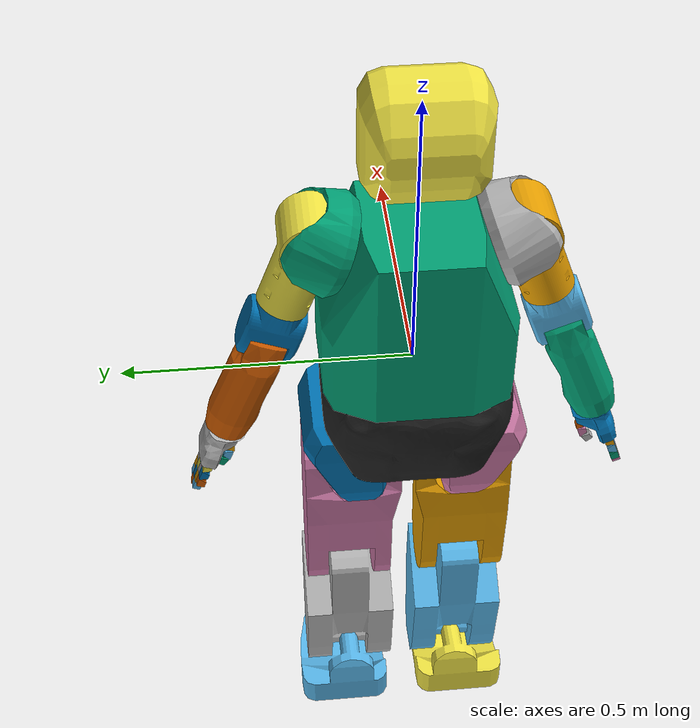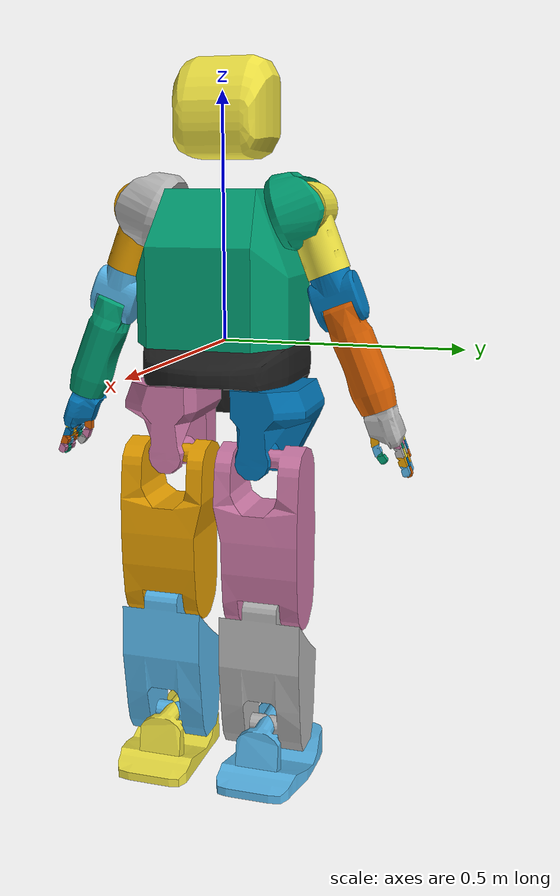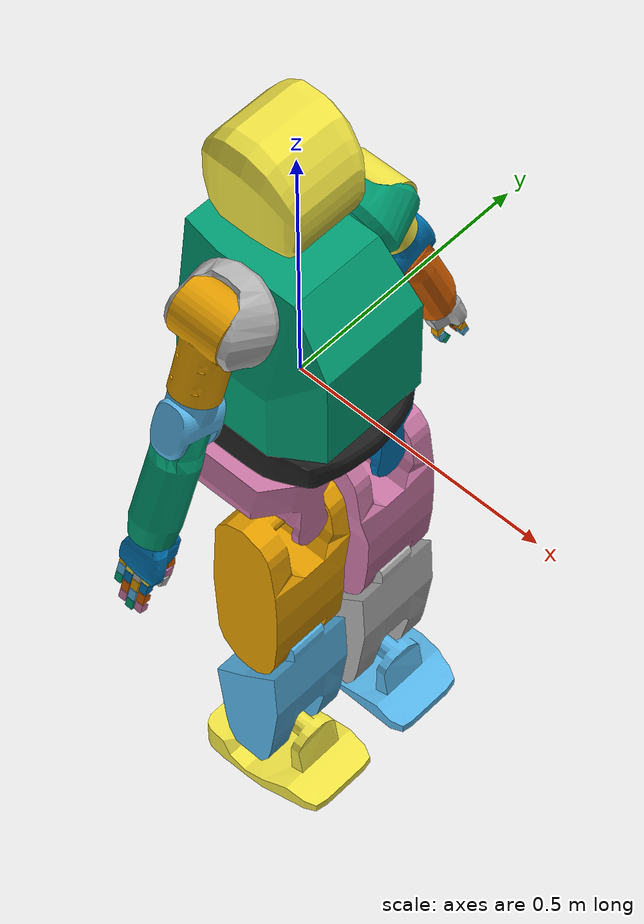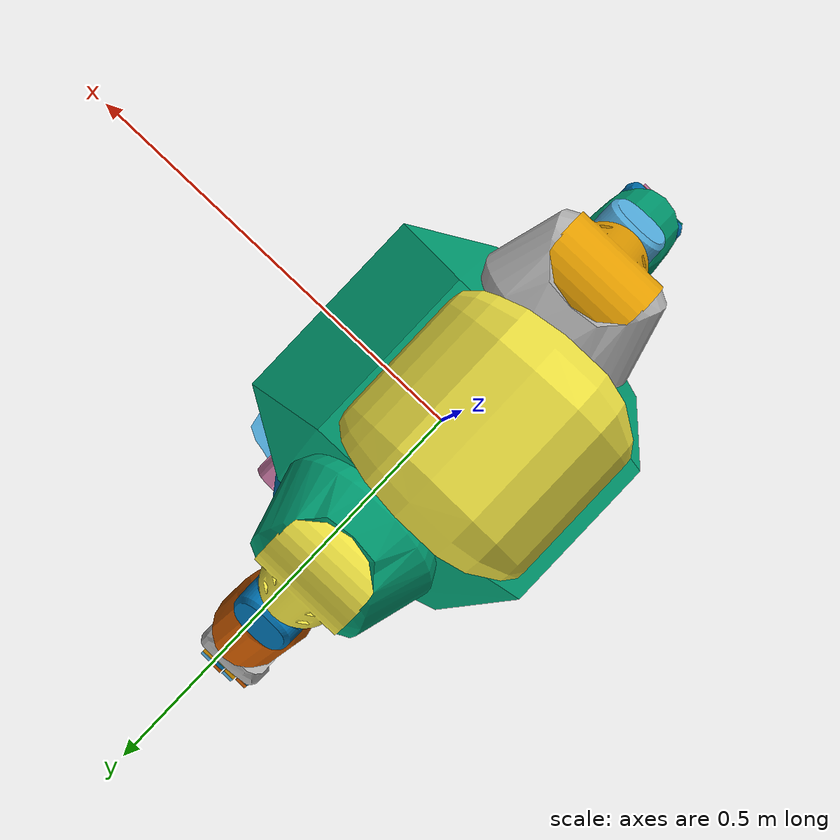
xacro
<?xml version="1.0"?>
<robot name="rrbot" xmlns:xacro="http://ros.org/wiki/xacro">

       <xacro:include filename="$(find ar600_description)/gazebo/gazebo.urdf.xacro" />
       <xacro:include filename="$(find ar600_description)/urdf/base/base.urdf.xacro" />
       <xacro:include filename="$(find ar600_description)/urdf/head/head.urdf.xacro" />
       <xacro:include filename="$(find ar600_description)/urdf/leg/leg.urdf.xacro" />
       <xacro:include filename="$(find ar600_description)/urdf/hand/hand.urdf.xacro" />
       <xacro:include filename="$(find ar600_description)/urdf/palm/palm.urdf.xacro" />

       <link name="world"/>

       <xacro:ar600_body_macro name="base"/>

       <joint name="fixed" type="fixed">
			<parent link="world"/>
			<child link="base_link"/>
		</joint>

       <xacro:ar600_head_xacro name="head" parent="torso">
			<origin xyz="-0.05 0 .37" rpy="0 0 0"/>
       </xacro:ar600_head_xacro>

		<xacro:ar600_leg_macro side="right" reflect="-1" parent="base">
			<origin xyz="0.025 -.1 -0.085" rpy=" 0 0 0"/>
		</xacro:ar600_leg_macro>

		<xacro:ar600_leg_macro side="left" reflect="1" parent="base">
			<origin xyz="0.025 .1 -0.085" rpy=" 0 0 0"/>
		</xacro:ar600_leg_macro>

		<xacro:ar600_hand_macro side="left" parent="torso" reflect="1">
			<origin xyz="-0.01 0.12 .25" rpy="1.57 1.2 1.57"/>
		</xacro:ar600_hand_macro>

		<xacro:ar600_hand_macro side="right" parent="torso" reflect="-1">
			<origin xyz="-0.01 -0.12 .25" rpy="-1.57 1.2 -1.57"/>
		</xacro:ar600_hand_macro>

		<xacro:ar600_palm_macro side="right" otherside="left" parent="right_hand_effector" reflect="-1">
			<origin xyz="0 0 0" rpy="0 0 1.57"/>
		</xacro:ar600_palm_macro>

		<xacro:ar600_palm_macro side="left" otherside="right" parent="left_hand_effector" reflect="1">
			<origin xyz="0 0 0" rpy="0 0 -1.57"/>
		</xacro:ar600_palm_macro>
</robot>

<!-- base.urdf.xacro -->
<robot xmlns:xacro="http://ros.org/wiki/xacro">

  	<xacro:include filename="$(find ar600_description)/urdf/base/base.gazebo.xacro" />

	<xacro:macro name="ar600_body_macro" params="name">
		<link name="${name}_link">
			<inertial>
				<mass value="10"/>
				<inertia
					 ixx="1.0" ixy="0.0" ixz="0.0"
					 		   iyy="1.0" iyz="0.0"
					                     izz="1.0"
				/>
			</inertial>
			<collision>
				<geometry>
					<mesh filename="package://ar600_description/meshes/base.stl"/>
				</geometry>
			</collision>
			<visual>
				<geometry>
					<mesh filename="package://ar600_description/meshes/base_low.dae"/>
				</geometry>
			</visual>
		</link>

		<link name="torso_link">
			<inertial>
				<mass value="30"/>
				<inertia
					 ixx="1.0" ixy="0.0" ixz="0.0"
					 	       iyy="1.0" iyz="0.0"
					                     izz="1.0"
				/>
			</inertial>
			<collision>
				<geometry>
					<mesh filename="package://ar600_description/meshes/body.stl"/>
				</geometry>
			</collision>
			<visual>
				<geometry>
					<mesh filename="package://ar600_description/meshes/body.dae"/>
				</geometry>
			</visual>
		</link>

	 	<joint name="torso_rotation_joint" type="revolute">
				<axis xyz="0 0 1" />
				<dynamics damping="0.7" />
				<parent link="${name}_link"/>
				<child link="torso_link"/>
				<limit effort="1000.0" lower="-.5" upper=".5" velocity="0.5"/>
				<origin xyz="0 0 0" rpy="0 0 0"/>
    	</joint>

		<xacro:ar600_base_gazebo name="${name}"/>
		<xacro:ar600_torso_gazebo name="${name}"/>
	</xacro:macro>

</robot>

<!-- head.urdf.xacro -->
<robot xmlns:xacro="http://ros.org/wiki/xacro">

	<xacro:include filename="$(find ar600_description)/urdf/head/head.gazebo.xacro" />

  	<xacro:macro name="ar600_head_xacro" params="name parent *origin">
  		<link name="${name}_link">
			<visual>
				<geometry>
					<mesh filename="package://ar600_description/meshes/head_low.dae"/>
				</geometry>
			</visual>
			<inertial>
				<mass value="1"/>
				<inertia
					 ixx="1.0" ixy="0.0" ixz="0.0"
					 		   iyy="1.0" iyz="0.0"
					 		             izz="1.0"/>
			</inertial>
			<collision>
				<geometry>
					<mesh filename="package://ar600_description/meshes/phys_model/head.stl"/>
				</geometry>

			</collision>
  		</link>

  		<link name="head_mount">
			<inertial>
				<mass value=".1"/>
				<inertia
					 ixx="1.0" ixy="0.0" ixz="0.0"
					           iyy="1.0" iyz="0.0"
					                     izz="1.0"/>
			</inertial>
  		</link>

		<link name="head_tilt_mount">
			<inertial>
				<mass value=".1"/>
				<inertia
					 ixx="1.0" ixy="0.0" ixz="0.0"
					 		   iyy="1.0" iyz="0.0"
					 		   			 izz="1.0"/>
			</inertial>
  		</link>

  		<joint name="torso_head_mount" type="revolute">
			<parent link="${parent}_link"/>
			<child link="head_mount"/>
			<xacro:insert_block name="origin"/>
			<limit effort="1000.0" lower="-0.548" upper="0.548" velocity="0.5"/>
			<axis xyz="0 0 1"/>
			<dynamics damping="0.7" />
		</joint>

  		<joint name="mount_head_tilt_mount" type="revolute">
			<parent link="head_mount"/>
			<child link="head_tilt_mount"/>
			<origin xyz="0 0 0" rpy="0 0 0"/>
			<limit effort="1000.0" lower="-.1" upper="0.1" velocity="0.5"/>
			<axis xyz="1 0 0"/>
			<dynamics damping="0.7" />
		</joint>

		<joint name="head_mount_head" type="revolute">
			<parent link="head_tilt_mount"/>
			<child link="${name}_link"/>
			<limit effort="1000.0" lower="-0.25" upper="0.25" velocity="0.5"/>
			<axis xyz="0 1 0"/>
			<dynamics damping="0.7" />
			<origin xyz="0 0 0" rpy="0 0 0"/>
		</joint>

  	</xacro:macro>
</robot>

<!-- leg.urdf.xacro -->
<robot xmlns:xacro="http://ros.org/wiki/xacro">

	<xacro:include filename="$(find ar600_description)/urdf/leg/leg.gazebo.xacro" />
  	<xacro:include filename="$(find ar600_description)/urdf/leg/leg.transmission.xacro" />

	<xacro:macro name="ar600_leg_macro" params="parent side reflect *origin">

		<link name="base_${side}_hip">
			<visual>
				<geometry>
					<mesh filename="package://ar600_description/meshes/${side}_base_leg_low.dae"/>
				</geometry>
			</visual>
			<inertial>
				<mass value="5"/>
				<inertia
					 ixx="1.0" ixy="0.0" ixz="0.0"
					 		   iyy="1.0" iyz="0.0"
					 		             izz="1.0"/>
			</inertial>
		</link>

		<link name="${side}_hip_mount">
			<inertial>
				<mass value="1"/>
				<inertia
					 ixx="1.0" ixy="0.0" ixz="0.0"
						       iyy="1.0" iyz="0.0"
						           		 izz="1.0"/>
			</inertial>
		</link>

		<link name="${side}_hip">
			<visual>
				<geometry>
					<mesh filename="package://ar600_description/meshes/${side}_leg_low.dae"/>
				</geometry>
			</visual>
			<inertial>
				<mass value="5"/>
				<inertia
					 ixx="1.0" ixy="0.0" ixz="0.0"
							   iyy="1.0" iyz="0.0"
							       		 izz="1.0"/>
			</inertial>
			<collision>
				<geometry>
					<mesh filename="package://ar600_description/meshes/phys_model/hip.stl"/>
				</geometry>
			</collision>
		</link>

		<link name="${side}_shin">
			<visual>
				<geometry>
					<mesh filename="package://ar600_description/meshes/shin_low.dae"/>
				</geometry>
			</visual>
			<inertial>
				<mass value="5"/>
				<inertia
					 ixx="1.0" ixy="0.0" ixz="0.0"
					           iyy="1.0" iyz="0.0"
					                     izz="1.0"/>
			</inertial>
			<collision>
				<geometry>
					<mesh filename="package://ar600_description/meshes/phys_model/phys_shin.stl"/>
				</geometry>
			</collision>
		</link>

		<link name="${side}_shin_foot_mount">
			<inertial>
				<mass value="1"/>
				<inertia
					 ixx="1.0" ixy="0.0" ixz="0.0"
					 		   iyy="1.0" iyz="0.0"
					 		             izz="1.0"/>
			</inertial>
		</link>

		<link name="${side}_foot">
			<visual>
				<geometry>
					<mesh filename="package://ar600_description/meshes/${side}_foot_low.dae"/>
				</geometry>
			</visual>
			<inertial>
				<mass value="2"/>
				<inertia
					 ixx="1.0" ixy="0.0" ixz="0.0"
					           iyy="1.0" iyz="0.0"
					                     izz="1.0"/>
			</inertial>
			<collision>
				<geometry>
					<mesh filename="package://ar600_description/meshes/phys_model/foot.stl"/>
				</geometry>
			</collision>
		</link>

		<joint name="base_${side}_leg_joint" type="revolute">
			<parent link="${parent}_link"/>
			<child link="base_${side}_hip"/>
			<xacro:insert_block name="origin"/>
			<axis xyz="0 0 ${reflect}"/>
			<limit effort="1000.0" lower="${-.5*reflect}" upper="${.5*reflect}" velocity="0.5"/>
			<dynamics damping="0.7" />
		</joint>

		<joint name="${side}_base_mount" type="revolute">
			<parent link="base_${side}_hip"/>
			<child link="${side}_hip_mount"/>
			<origin xyz="0.0267 0 -.154" rpy=" 0 0 0"/>
			<limit effort="1000.0" lower="${-.5*reflect}" upper="${.5*reflect}" velocity="0.5"/>
			<axis xyz="${reflect} 0 0"/>
			<dynamics damping="0.7" />
		</joint>

		<joint name="${side}_base_mount_hip" type="revolute">
			<parent link="${side}_hip_mount"/>
			<child link="${side}_hip"/>
			<origin xyz="0 0 0" rpy="0 0 0"/>
			<limit effort="1000.0" lower="-.5" upper=".5" velocity="0.5"/>
			<axis xyz="0 -1 0"/>
			<dynamics damping="0.7" />
		</joint>

		<joint name="${side}_hip_${side}_shin" type="revolute">
			<parent link="${side}_hip"/>
			<child link="${side}_shin"/>
			<origin xyz="0 ${.01*reflect} -.335" rpy="0 0 0"/>
			<limit effort="1000.0" lower="0" upper=".707" velocity="0.5"/>
			<axis xyz="0 1 0"/>
			<dynamics damping="0.7" />
		</joint>

		<joint name="${side}_shin_${side}_foot_mount" type="revolute">
			<parent link="${side}_shin"/>
			<child link="${side}_shin_foot_mount"/>
			<origin xyz="0 0 -.26" rpy="0 0 0"/>
			<limit effort="1000.0" lower="-.707" upper=".707" velocity="0.5"/>
			<axis xyz="0 1 0"/>
			<dynamics damping="0.7" />
		</joint>

		<joint name="${side}_shin_mount_${side}_foot" type="revolute">
			<parent link="${side}_shin_foot_mount"/>
			<child link="${side}_foot"/>
			<limit effort="1000.0" lower="${-.707*reflect}" upper="${.707*reflect}" velocity="0.5"/>
			<axis xyz="${reflect} 0 0"/>
			<dynamics damping="0.7"/>
		</joint>

		<xacro:base_leg_joint_controller_macro side="${side}"/>
		<xacro:base_mount_controller_macro side="${side}"/>
		<xacro:base_mount_hip_controller_macro side="${side}"/>
		<xacro:hip_shin_controller_macro side="${side}"/>
		<xacro:shin_foot_mount_controller_macro side="${side}"/>
		<xacro:shin_mount_foot_controller_macro side="${side}"/>

	</xacro:macro>

</robot>

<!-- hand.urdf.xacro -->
<robot xmlns:xacro="http://ros.org/wiki/xacro">

	<xacro:include filename="$(find ar600_description)/urdf/hand/hand.gazebo.xacro" />
  	<xacro:include filename="$(find ar600_description)/urdf/hand/hand.transmission.xacro" />

	<xacro:macro name="ar600_hand_macro" params="parent side reflect *origin">

		<link name="${side}_shoulder">
			<visual>
				<geometry>
					<mesh filename="package://ar600_description/meshes/${side}_shoulder_low.dae"/>
				</geometry>
			</visual>
			<inertial>
				<mass value="1"/>
				<inertia
					 ixx="1.0" ixy="0.0" ixz="0.0"
					 		   iyy="1.0" iyz="0.0"
					 		   			 izz="1.0"/>
			</inertial>
		</link>

		<link name="${side}_upper_forearm">
			<visual>
				<geometry>
					<mesh filename="package://ar600_description/meshes/${side}_upper_arm_high.dae"/>
				</geometry>
			</visual>
			<inertial>
				<mass value="4"/>
				<inertia
					 ixx="1.0" ixy="0.0" ixz="0.0"
					 	       iyy="1.0" iyz="0.0"
					 	       			 izz="1.0"/>
			</inertial>

			<collision>
				<geometry>
					<mesh filename="package://ar600_description/meshes/phys_model/forearm.stl"/>
				</geometry>
			</collision>
		</link>

		<link name="${side}_elbow">
			<visual>
				<geometry>
					<mesh filename="package://ar600_description/meshes/elbow_low.dae"/>
				</geometry>
			</visual>
			<inertial>
				<mass value="1"/>
				<inertia
					 ixx="1.0" ixy="0.0" ixz="0.0"
					 		   iyy="1.0" iyz="0.0"
					 		             izz="1.0"/>
			</inertial>

			<collision>
				<geometry>
					<mesh filename="package://ar600_description/meshes/phys_model/elbow.stl"/>
				</geometry>
			</collision>
		</link>

		<link name="${side}_arm_link">
			<visual>
				<geometry>
					<mesh filename="package://ar600_description/meshes/${side}_arm.dae"/>
				</geometry>
			</visual>
			<inertial>
				<mass value="3"/>
				<inertia
					 ixx="1.0" ixy="0.0" ixz="0.0"
					 		   iyy="1.0" iyz="0.0"
					 		             izz="1.0"/>
			</inertial>
			<collision>
				<geometry>
					<mesh filename="package://ar600_description/meshes/phys_model/arm.stl"/>
				</geometry>
			</collision>
		</link>

		<link name="${side}_hand_effector_link">
			<inertial>
				<mass value=".1"/>
				<inertia
					 ixx="1.0" ixy="0.0" ixz="0.0"
					 		   iyy="1.0" iyz="0.0"
					 		   			 izz="1.0"/>
			</inertial>
		</link>

		<joint name="torso_${side}_shoulder" type="revolute">
			<parent link="${parent}_link"/>
			<child link="${side}_shoulder"/>
			<xacro:insert_block name="origin"/>
			<limit effort="1000.0" lower="0" upper="3.14" velocity="0.5"/>
			<axis xyz="0 -1 0"/>
			<dynamics damping="0.7" />
		</joint>

		<joint name="${side}_upper_forearm_shoulder" type="revolute">
			<parent link="${side}_shoulder"/>
			<child link="${side}_upper_forearm"/>
			<origin xyz="0 ${.055*reflect} 0" rpy="-1.57 0 1.57"/>
			<limit effort="1000.0" lower="0.0" upper="1.57" velocity="0.5"/>
			<axis xyz="0 ${-1 * reflect} 0"/>
			<dynamics damping="0.7" />
		</joint>

		<joint name="${side}_upper_forearm_${side}_lower_forearm" type="revolute">
			<parent link="${side}_upper_forearm"/>
			<child link="${side}_elbow"/>
			<origin xyz="0 0 -0.12" rpy="0 0 0"/>
			<limit effort="1000.0" lower="${-1.57}" upper="${1.57}" velocity="0.5"/>
			<axis xyz="0 0 ${reflect}"/>
			<dynamics damping="0.7" />
		</joint>

		<joint name="${side}_lower_forearm_arm" type="revolute">
			<parent link="${side}_elbow"/>
			<child link="${side}_arm_link"/>
			<origin xyz="0 0 -0.1" rpy="0 0 0"/>
			<limit effort="1000.0" lower="0" upper="1.57" velocity="0.5"/>
			<axis xyz="-1 0 0"/>
			<dynamics damping="0.7" />
		</joint>

		<joint name="${side}_lower_arm_effector" type="revolute">
			<parent link="${side}_arm_link"/>
			<child link="${side}_hand_effector_link"/>
			<limit effort="1000.0" lower="-0.707" upper="0.707" velocity="0.5"/>
			<origin xyz="0.005 0.005 -0.21" rpy="0 0 0"/>
			<axis xyz="0 0 -1"/>
			<dynamics damping="0.7" />
		</joint>
		<xacro:shoulder_transmission_macro side="${side}"/>
		<xacro:upper_forearm_shoulder_transmission_macro side="${side}"/>
		<xacro:upper_forearm_lower_forearm_transmission_macro side="${side}"/>
		<xacro:elbow_transmission_macro side="${side}"/>
		<xacro:arm_transmission_macro side="${side}"/>
	</xacro:macro>
</robot>

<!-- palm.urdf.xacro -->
<robot xmlns:xacro="http://ros.org/wiki/xacro">

	<xacro:include filename="$(find ar600_description)/urdf/palm/finger.urdf.xacro" />

	<xacro:macro name="ar600_palm_macro" params="parent side otherside reflect *origin">
		<link name="${side}_palm">
			<visual>
				<geometry>
					<mesh filename="package://ar600_description/meshes/${side}_palm_vis.dae"/>
				</geometry>
			</visual>
			<inertial>
				<mass value="0.1"/>
				<inertia
					 ixx="1.0" ixy="0.0" ixz="0.0"
					           iyy="1.0" iyz="0.0"
					                     izz="1.0"/>
			</inertial>
			<collision>
				<geometry>
					<mesh filename="package://ar600_description/meshes/${side}_palm.stl"/>
				</geometry>
			</collision>
		</link>

		<link name="${side}bigfingerseg1">
			<visual>
				<geometry>
					<mesh filename="package://ar600_description/meshes/finger_segment.dae"/>
				</geometry>
			</visual>
			<inertial>
				<mass value="0.05"/>
				<inertia
					 ixx="1.0" ixy="0.0" ixz="0.0"
					           iyy="1.0" iyz="0.0"
					                     izz="1.0"/>
			</inertial>
			<collision>
				<geometry>
					<mesh filename="package://ar600_description/meshes/finger_segment.stl"/>
				</geometry>
			</collision>
		</link>

		<link name="${side}bigfingerseg2">
			<visual>
				<geometry>
					<mesh filename="package://ar600_description/meshes/finger_segment.dae"/>
				</geometry>
			</visual>
			<inertial>
				<mass value="0.05"/>
				<inertia
				 	 ixx="1.0" ixy="0.0" ixz="0.0"
				           	   iyy="1.0" iyz="0.0"
				                         izz="1.0"/>
			</inertial>
			<collision>
				<geometry>
					<mesh filename="package://ar600_description/meshes/finger_segment.stl"/>
				</geometry>
			</collision>
		</link>

		<link name="${side}bigfingerseg3">
			<visual>
				<geometry>
					<mesh filename="package://ar600_description/meshes/finger_tip.dae"/>
				</geometry>
			</visual>
			<inertial>
				<mass value="0.05"/>
				<inertia
					 ixx="1.0" ixy="0.0" ixz="0.0"
				               iyy="1.0" iyz="0.0"
				                         izz="1.0"/>
				</inertial>
			<collision>
				<geometry>
					<mesh filename="package://ar600_description/meshes/finger_segment.stl"/>
				</geometry>
			</collision>
		</link>

		<joint name="arm_${side}_palm" type="revolute">
				<parent link="${parent}_link"/>
				<child link="${side}_palm"/>
				<xacro:insert_block name="origin"/>
				<limit effort="1000.0" lower="-0.707" upper="0.707" velocity="0.5"/>
				<axis xyz="0 0 ${-reflect}"/>
				<dynamics damping="0.7"/>
		</joint>

		<joint name="${side}_palm_thumb1" type="fixed">
			<parent link="${side}_palm"/>
			<child link="${side}bigfingerseg1"/>
			<origin xyz="${0.022*reflect} -0.025 -.045" rpy="0.314 0 3.14"/>
			<dynamics damping="0.7"/>
		</joint>

		<joint name="${side}_thumb1_thumb2" type="revolute">
			<parent link="${side}bigfingerseg1"/>
			<child link="${side}bigfingerseg2"/>
			<origin xyz="0 0 -0.02" rpy="-0.314 0 0"/>
			<limit effort="1000.0" lower="0" upper="0.707" velocity="0.5"/>
			<axis xyz="${-1*reflect} 0 0"/>
			<dynamics damping="0.7"/>
		</joint>

		<joint name="${side}_thumb2_thumb3" type="revolute">
			<parent link="${side}bigfingerseg2"/>
			<child link="${side}bigfingerseg3"/>
			<origin xyz="0 0 -0.02" rpy="-0.314 0 0"/>
			<limit effort="1000.0" lower="0" upper="0.707" velocity="0.5"/>
			<axis xyz="${-1*reflect} 0 0"/>
			<dynamics damping="0.7"/>
		</joint>

		<link name="${side}f41">
			<visual>
				<geometry>
					<mesh filename="package://ar600_description/meshes/finger_segment.dae"/>
				</geometry>
			</visual>
			<inertial>
				<mass value="0.05"/>
				<inertia
				 	 ixx="1.0" ixy="0.0" ixz="0.0"
					           iyy="1.0" iyz="0.0"
					                     izz="1.0"/>
			</inertial>
			<collision>
				<geometry>
					<mesh filename="package://ar600_description/meshes/finger_segment.stl"/>
				</geometry>
			</collision>
		</link>

		<link name="${side}f42">
			<visual>
				<geometry>
					<mesh filename="package://ar600_description/meshes/finger_segment.dae"/>
				</geometry>
			</visual>
			<inertial>
				<mass value="0.05"/>
				<inertia
				 	 ixx="1.0" ixy="0.0" ixz="0.0"
				               iyy="1.0" iyz="0.0"
				                         izz="1.0"/>
			</inertial>
			<collision>
				<geometry>
					<mesh filename="package://ar600_description/meshes/finger_segment.stl"/>
				</geometry>
			</collision>
		</link>

		<link name="${side}f43">
			<visual>
				<geometry>
					<mesh filename="package://ar600_description/meshes/finger_tip.dae"/>
				</geometry>
			</visual>
			<inertial>
				<mass value="0.05"/>
				<inertia
				 	 ixx="1.0" ixy="0.0" ixz="0.0"
				           	   iyy="1.0" iyz="0.0"
				                         izz="1.0"/>
			</inertial>
			<collision>
				<geometry>
					<mesh filename="package://ar600_description/meshes/finger_segment.stl"/>
				</geometry>
			</collision>
		</link>

		<joint name="${side}_palm_f4" type="fixed">
			<parent link="${side}_palm"/>
			<child link="${side}f41"/>
			<origin xyz="${-.03*reflect} 0.01 -0.0575" rpy="0 0 0"/>
			<dynamics damping="0.7"/>
		</joint>

		<joint name="${side}_f41_f42" type="revolute">
			<parent link="${side}f41"/>
			<child link="${side}f42"/>
			<origin xyz="0 0 -0.02" rpy="0 0 0"/>
			<limit effort="1000.0" lower="0" upper="0.707" velocity="0.5"/>
			<axis xyz="${-1*reflect} 0 0"/>
			<dynamics damping="0.7"/>
		</joint>

		<joint name="${side}_f42_f43" type="revolute">
			<parent link="${side}f42"/>
			<child link="${side}f43"/>
			<origin xyz="0 0 -0.02" rpy="0 0 0"/>
			<limit effort="1000.0" lower="0" upper="0.707" velocity="0.5"/>
			<axis xyz="${-1*reflect} 0 0"/>
			<dynamics damping="0.7"/>
		</joint>

		<xacro:ar600_palm_finger_macro parent="${side}_palm" side="${side}" otherside="${otherside}" reflect="${reflect}" index="1">
			<origin xyz="${0.022*reflect} 0.01 -0.0625" rpy="0 0 0"/>
		</xacro:ar600_palm_finger_macro>

		<xacro:ar600_palm_finger_macro parent="${side}_palm" side="${side}" otherside="${otherside}" reflect="${reflect}" index="2">
			<origin xyz="${.004*reflect} 0.01 -0.068" rpy="0 0 0"/>
		</xacro:ar600_palm_finger_macro>

		<xacro:ar600_palm_finger_macro parent="${side}_palm" side="${side}" otherside="${otherside}" reflect="${reflect}" index="3">
			<origin xyz="${-.013*reflect} 0.01 -0.0625" rpy="0 0 0"/>
		</xacro:ar600_palm_finger_macro>
	</xacro:macro>

</robot>

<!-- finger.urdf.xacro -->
<robot xmlns:xacro="http://ros.org/wiki/xacro">

	<xacro:macro name="ar600_palm_finger_macro" params="parent side otherside reflect index *origin">
		<link name="${side}f${index}1">
			<visual>
				<geometry>
					<mesh filename="package://ar600_description/meshes/finger_segment.dae"/>
				</geometry>
			</visual>
			<inertial>
				<mass value="0.05"/>
				<inertia
					 ixx="1.0" ixy="0.0" ixz="0.0"
					           iyy="1.0" iyz="0.0"
					                     izz="1.0"/>
			</inertial>
			<collision>
				<geometry>
					<mesh filename="package://ar600_description/meshes/finger_segment.stl"/>
				</geometry>
			</collision>
		</link>

		<link name="${side}f${index}2">
			<visual>
				<geometry>
					<mesh filename="package://ar600_description/meshes/finger_segment.dae"/>
				</geometry>
			</visual>
			<inertial>
				<mass value="0.05"/>
				<inertia
					 ixx="1.0" ixy="0.0" ixz="0.0"
					           iyy="1.0" iyz="0.0"
					                     izz="1.0"/>
				</inertial>
		    <collision>
				<geometry>
					<mesh filename="package://ar600_description/meshes/finger_segment.stl"/>
				</geometry>
			</collision>
		</link>

		<link name="${side}f${index}3">
			<visual>
				<geometry>
					<mesh filename="package://ar600_description/meshes/finger_segment.dae"/>
				</geometry>
			</visual>
			<inertial>
				<mass value="0.05"/>
				<inertia
					 ixx="1.0" ixy="0.0" ixz="0.0"
					           iyy="1.0" iyz="0.0"
					                     izz="1.0"/>
			</inertial>
			<collision>
				<geometry>
					<mesh filename="package://ar600_description/meshes/finger_segment.stl"/>
				</geometry>
			</collision>
		</link>

		<link name="${side}f${index}4">
			<visual>
				<geometry>
					<mesh filename="package://ar600_description/meshes/finger_tip.dae"/>
				</geometry>
			</visual>
			<inertial>
				<mass value="0.05"/>
				<inertia
					 ixx="1.0" ixy="0.0" ixz="0.0"
					           iyy="1.0" iyz="0.0"
					                     izz="1.0"/>
				</inertial>
			<collision>
				<geometry>
					<mesh filename="package://ar600_description/meshes/finger_segment.stl"/>
				</geometry>
			</collision>
		</link>

		<joint name="${side}_palm_f${index}" type="fixed">
			<parent link="${parent}"/>
			<child link="${side}f${index}1"/>
			<xacro:insert_block name="origin"/>
		</joint>

		<joint name="${side}_f${index}1_f${index}2" type="revolute">
			<parent link="${side}f${index}1"/>
			<child link="${side}f${index}2"/>
			<origin xyz="0 0 -0.02" rpy="0 0 0"/>
			<limit effort="1000.0" lower="0" upper="0.707" velocity="0.5"/>
			<axis xyz="${-1*reflect} 0 0"/>
		</joint>

		<joint name="${side}_f${index}2_f${index}3" type="revolute">
			<parent link="${side}f${index}2"/>
			<child link="${side}f${index}3"/>
			<origin xyz="0 0 -0.02" rpy="0 0 0"/>
			<limit effort="1000.0" lower="0" upper="0.707" velocity="0.5"/>
			<axis xyz="${-1*reflect} 0 0"/>
		</joint>

		<joint name="${side}_f${index}3_f${index}4" type="revolute">
			<parent link="${side}f${index}3"/>
			<child link="${side}f${index}4"/>
			<origin xyz="0 0 -0.02" rpy="0 0 0"/>
			<limit effort="1000.0" lower="0" upper="0.707" velocity="0.5"/>
			<axis xyz="${-1*reflect} 0 0"/>
		</joint>

	</xacro:macro>
</robot>
